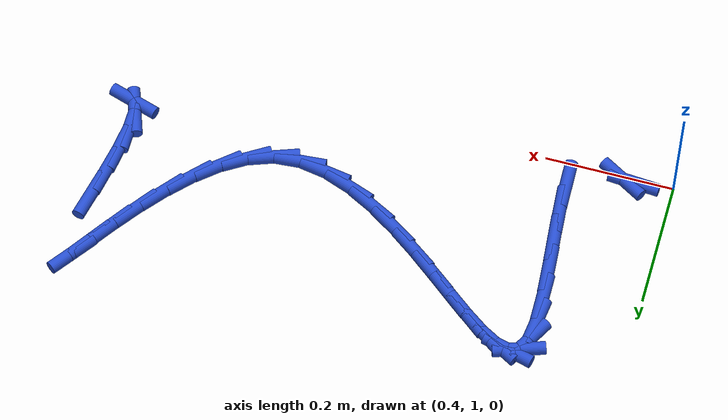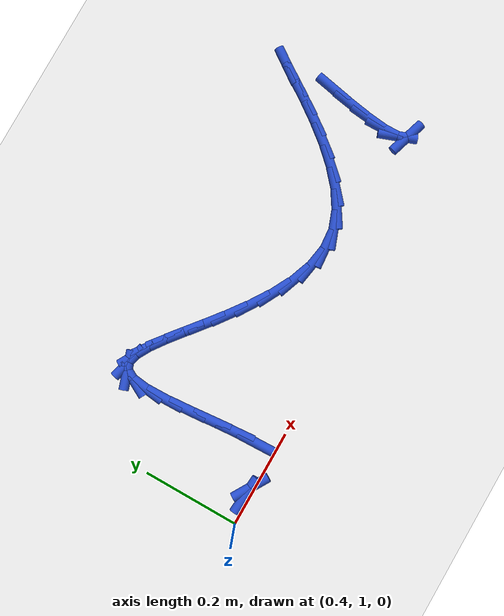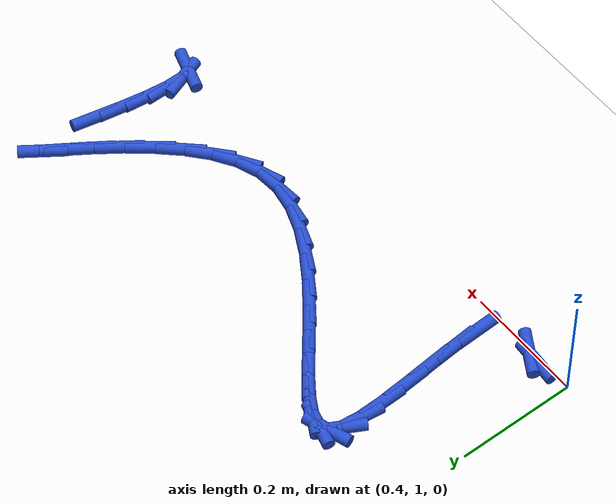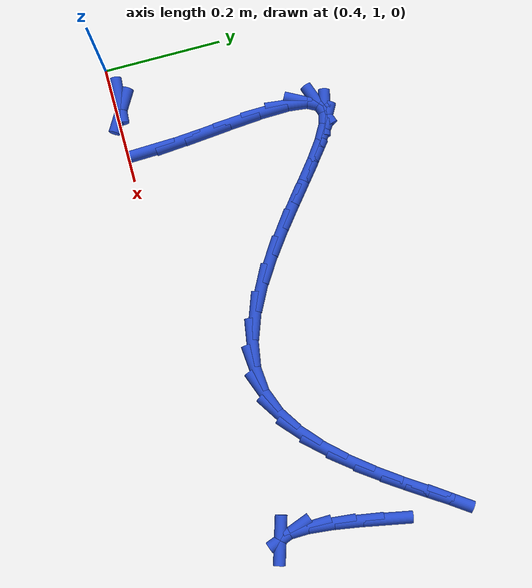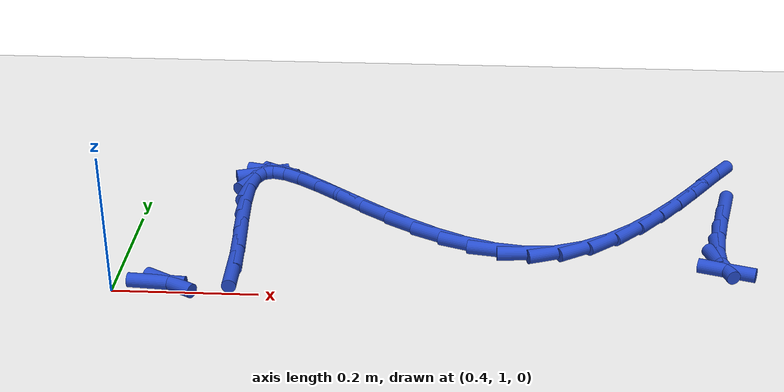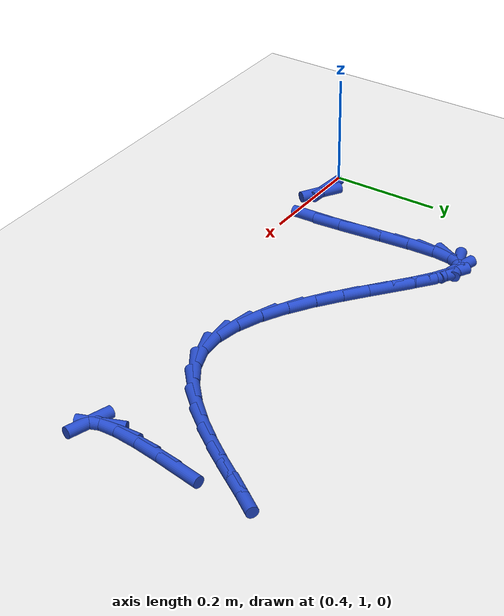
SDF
<sdf version="1.6">
 <world name="default">
  <model name="ground_plane">
   <static>1</static>
   <link name="link">
    <collision name="collision">
     <geometry><plane><normal>0 0 1</normal><size>100 100</size></plane></geometry>
     <surface><friction><ode><mu>100</mu><mu2>50</mu2></ode></friction></surface>
    </collision>
    <visual name="visual">
     <cast_shadows>0</cast_shadows>
     <geometry><plane><normal>0 0 1</normal><size>100 100</size></plane></geometry>
     <material>
      <script><uri>file://media/materials/scripts/gazebo.material</uri><name>Gazebo/WhiteGlow</name></script>
     </material>
    </visual>
   </link>
  </model>
  <model name="line">
   <link name="link_33">
    <pose>0.4602648941003201 1.010320573180472 0.01 0 1.57 -0.07676159061233405</pose>
    <collision name="collision">
     <geometry><cylinder><radius>0.01</radius><length>0.08</length></cylinder></geometry>
    </collision>
    <visual name="visual">
     <material>
      <script><name>Gazebo/Blue</name><uri>file://media/materials/scripts/gazebo.material</uri></script>
     </material>
     <geometry><cylinder><radius>0.01</radius><length>0.08</length></cylinder></geometry>
    </visual>
   </link>
   <link name="link_34">
    <pose>0.47812992323283066 1.0089465252805625 0.01 0 1.57 -0.5379317936606891</pose>
    <collision name="collision">
     <geometry><cylinder><radius>0.01</radius><length>0.08</length></cylinder></geometry>
    </collision>
    <visual name="visual">
     <material>
      <script><name>Gazebo/Blue</name><uri>file://media/materials/scripts/gazebo.material</uri></script>
     </material>
     <geometry><cylinder><radius>0.01</radius><length>0.08</length></cylinder></geometry>
    </visual>
   </link>
   <link name="link_39">
    <pose>0.5580728977265976 1.042823385247488 0.01 0 1.57 -1.537762590267961</pose>
    <collision name="collision">
     <geometry><cylinder><radius>0.01</radius><length>0.08</length></cylinder></geometry>
    </collision>
    <visual name="visual">
     <material>
      <script><name>Gazebo/Blue</name><uri>file://media/materials/scripts/gazebo.material</uri></script>
     </material>
     <geometry><cylinder><radius>0.01</radius><length>0.08</length></cylinder></geometry>
    </visual>
   </link>
   <link name="link_40">
    <pose>0.5565641265849606 1.0884804151800913 0.01 0 1.57 -1.4914132713912989</pose>
    <collision name="collision">
     <geometry><cylinder><radius>0.01</radius><length>0.08</length></cylinder></geometry>
    </collision>
    <visual name="visual">
     <material>
      <script><name>Gazebo/Blue</name><uri>file://media/materials/scripts/gazebo.material</uri></script>
     </material>
     <geometry><cylinder><radius>0.01</radius><length>0.08</length></cylinder></geometry>
    </visual>
   </link>
   <link name="link_41">
    <pose>0.5525079297955532 1.1394695452495438 0.01 0 1.57 -1.47904971407833</pose>
    <collision name="collision">
     <geometry><cylinder><radius>0.01</radius><length>0.08</length></cylinder></geometry>
    </collision>
    <visual name="visual">
     <material>
      <script><name>Gazebo/Blue</name><uri>file://media/materials/scripts/gazebo.material</uri></script>
     </material>
     <geometry><cylinder><radius>0.01</radius><length>0.08</length></cylinder></geometry>
    </visual>
   </link>
   <link name="link_42">
    <pose>0.54770135036678 1.1917121877468675 0.01 0 1.57 -1.4948579686003254</pose>
    <collision name="collision">
     <geometry><cylinder><radius>0.01</radius><length>0.08</length></cylinder></geometry>
    </collision>
    <visual name="visual">
     <material>
      <script><name>Gazebo/Blue</name><uri>file://media/materials/scripts/gazebo.material</uri></script>
     </material>
     <geometry><cylinder><radius>0.01</radius><length>0.08</length></cylinder></geometry>
    </visual>
   </link>
   <link name="link_43">
    <pose>0.543941431307045 1.2411297549630824 0.01 0 1.57 -1.5492486967942585</pose>
    <collision name="collision">
     <geometry><cylinder><radius>0.01</radius><length>0.08</length></cylinder></geometry>
    </collision>
    <visual name="visual">
     <material>
      <script><name>Gazebo/Blue</name><uri>file://media/materials/scripts/gazebo.material</uri></script>
     </material>
     <geometry><cylinder><radius>0.01</radius><length>0.08</length></cylinder></geometry>
    </visual>
   </link>
   <link name="link_44">
    <pose>0.5430252156247518 1.2836436591892102 0.01 0 1.57 1.4532387338493584</pose>
    <collision name="collision">
     <geometry><cylinder><radius>0.01</radius><length>0.08</length></cylinder></geometry>
    </collision>
    <visual name="visual">
     <material>
      <script><name>Gazebo/Blue</name><uri>file://media/materials/scripts/gazebo.material</uri></script>
     </material>
     <geometry><cylinder><radius>0.01</radius><length>0.08</length></cylinder></geometry>
    </visual>
   </link>
   <link name="link_45">
    <pose>0.5467493048111051 1.315176441488841 0.01 0 1.57 1.0748273457671325</pose>
    <collision name="collision">
     <geometry><cylinder><radius>0.01</radius><length>0.08</length></cylinder></geometry>
    </collision>
    <visual name="visual">
     <material>
      <script><name>Gazebo/Blue</name><uri>file://media/materials/scripts/gazebo.material</uri></script>
     </material>
     <geometry><cylinder><radius>0.01</radius><length>0.08</length></cylinder></geometry>
    </visual>
   </link>
   <link name="link_46">
    <pose>0.5563870217666208 1.3329884447594325 0.01 0 1.57 0.3323990029920479</pose>
    <collision name="collision">
     <geometry><cylinder><radius>0.01</radius><length>0.08</length></cylinder></geometry>
    </collision>
    <visual name="visual">
     <material>
      <script><name>Gazebo/Blue</name><uri>file://media/materials/scripts/gazebo.material</uri></script>
     </material>
     <geometry><cylinder><radius>0.01</radius><length>0.08</length></cylinder></geometry>
    </visual>
   </link>
   <link name="link_47">
    <pose>0.571675932542274 1.338266292021979 0.01 0 1.57 -0.2566521204653958</pose>
    <collision name="collision">
     <geometry><cylinder><radius>0.01</radius><length>0.08</length></cylinder></geometry>
    </collision>
    <visual name="visual">
     <material>
      <script><name>Gazebo/Blue</name><uri>file://media/materials/scripts/gazebo.material</uri></script>
     </material>
     <geometry><cylinder><radius>0.01</radius><length>0.08</length></cylinder></geometry>
    </visual>
   </link>
   <link name="link_48">
    <pose>0.5920733062352094 1.3329132069487015 0.01 0 1.57 -0.5135768854988078</pose>
    <collision name="collision">
     <geometry><cylinder><radius>0.01</radius><length>0.08</length></cylinder></geometry>
    </collision>
    <visual name="visual">
     <material>
      <script><name>Gazebo/Blue</name><uri>file://media/materials/scripts/gazebo.material</uri></script>
     </material>
     <geometry><cylinder><radius>0.01</radius><length>0.08</length></cylinder></geometry>
    </visual>
   </link>
   <link name="link_49">
    <pose>0.617036411942572 1.3188324132118214 0.01 0 1.57 -0.6248242220848798</pose>
    <collision name="collision">
     <geometry><cylinder><radius>0.01</radius><length>0.08</length></cylinder></geometry>
    </collision>
    <visual name="visual">
     <material>
      <script><name>Gazebo/Blue</name><uri>file://media/materials/scripts/gazebo.material</uri></script>
     </material>
     <geometry><cylinder><radius>0.01</radius><length>0.08</length></cylinder></geometry>
    </visual>
   </link>
   <link name="link_50">
    <pose>0.6460225187615066 1.2979271344835617 0.01 0 1.57 -0.6719822785928745</pose>
    <collision name="collision">
     <geometry><cylinder><radius>0.01</radius><length>0.08</length></cylinder></geometry>
    </collision>
    <visual name="visual">
     <material>
      <script><name>Gazebo/Blue</name><uri>file://media/materials/scripts/gazebo.material</uri></script>
     </material>
     <geometry><cylinder><radius>0.01</radius><length>0.08</length></cylinder></geometry>
    </visual>
   </link>
   <link name="link_51">
    <pose>0.6784888957891578 1.2721005944361439 0.01 0 1.57 -0.6836574019877206</pose>
    <collision name="collision">
     <geometry><cylinder><radius>0.01</radius><length>0.08</length></cylinder></geometry>
    </collision>
    <visual name="visual">
     <material>
      <script><name>Gazebo/Blue</name><uri>file://media/materials/scripts/gazebo.material</uri></script>
     </material>
     <geometry><cylinder><radius>0.01</radius><length>0.08</length></cylinder></geometry>
    </visual>
   </link>
   <link name="link_52">
    <pose>0.7138928121226714 1.2432560167417888 0.01 0 1.57 -0.670214420626298</pose>
    <collision name="collision">
     <geometry><cylinder><radius>0.01</radius><length>0.08</length></cylinder></geometry>
    </collision>
    <visual name="visual">
     <material>
      <script><name>Gazebo/Blue</name><uri>file://media/materials/scripts/gazebo.material</uri></script>
     </material>
     <geometry><cylinder><radius>0.01</radius><length>0.08</length></cylinder></geometry>
    </visual>
   </link>
   <link name="link_53">
    <pose>0.7516915368591915 1.213296625072719 0.01 0 1.57 -0.6342842632402688</pose>
    <collision name="collision">
     <geometry><cylinder><radius>0.01</radius><length>0.08</length></cylinder></geometry>
    </collision>
    <visual name="visual">
     <material>
      <script><name>Gazebo/Blue</name><uri>file://media/materials/scripts/gazebo.material</uri></script>
     </material>
     <geometry><cylinder><radius>0.01</radius><length>0.08</length></cylinder></geometry>
    </visual>
   </link>
   <link name="link_54">
    <pose>0.791342339095863 1.1841256431011566 0.01 0 1.57 -0.5738869354243196</pose>
    <collision name="collision">
     <geometry><cylinder><radius>0.01</radius><length>0.08</length></cylinder></geometry>
    </collision>
    <visual name="visual">
     <material>
      <script><name>Gazebo/Blue</name><uri>file://media/materials/scripts/gazebo.material</uri></script>
     </material>
     <geometry><cylinder><radius>0.01</radius><length>0.08</length></cylinder></geometry>
    </visual>
   </link>
   <link name="link_55">
    <pose>0.8323024879298315 1.1576462944993227 0.01 0 1.57 -0.4830324689933849</pose>
    <collision name="collision">
     <geometry><cylinder><radius>0.01</radius><length>0.08</length></cylinder></geometry>
    </collision>
    <visual name="visual">
     <material>
      <script><name>Gazebo/Blue</name><uri>file://media/materials/scripts/gazebo.material</uri></script>
     </material>
     <geometry><cylinder><radius>0.01</radius><length>0.08</length></cylinder></geometry>
    </visual>
   </link>
   <link name="link_56">
    <pose>0.8740292524582416 1.1357618029394396 0.01 0 1.57 -0.3515394751154033</pose>
    <collision name="collision">
     <geometry><cylinder><radius>0.01</radius><length>0.08</length></cylinder></geometry>
    </collision>
    <visual name="visual">
     <material>
      <script><name>Gazebo/Blue</name><uri>file://media/materials/scripts/gazebo.material</uri></script>
     </material>
     <geometry><cylinder><radius>0.01</radius><length>0.08</length></cylinder></geometry>
    </visual>
   </link>
   <link name="link_57">
    <pose>0.9159799017782378 1.1203753920937287 0.01 0 1.57 -0.16623458699434665</pose>
    <collision name="collision">
     <geometry><cylinder><radius>0.01</radius><length>0.08</length></cylinder></geometry>
    </collision>
    <visual name="visual">
     <material>
      <script><name>Gazebo/Blue</name><uri>file://media/materials/scripts/gazebo.material</uri></script>
     </material>
     <geometry><cylinder><radius>0.01</radius><length>0.08</length></cylinder></geometry>
    </visual>
   </link>
   <link name="link_58">
    <pose>0.9576117049869655 1.113390285634412 0.01 0 1.57 0.08123805987009364</pose>
    <collision name="collision">
     <geometry><cylinder><radius>0.01</radius><length>0.08</length></cylinder></geometry>
    </collision>
    <visual name="visual">
     <material>
      <script><name>Gazebo/Blue</name><uri>file://media/materials/scripts/gazebo.material</uri></script>
     </material>
     <geometry><cylinder><radius>0.01</radius><length>0.08</length></cylinder></geometry>
    </visual>
   </link>
   <link name="link_59">
    <pose>0.998381931960715 1.1167096852503764 0.01 0 1.57 0.35755066332058805</pose>
    <collision name="collision">
     <geometry><cylinder><radius>0.01</radius><length>0.08</length></cylinder></geometry>
    </collision>
    <visual name="visual">
     <material>
      <script><name>Gazebo/Blue</name><uri>file://media/materials/scripts/gazebo.material</uri></script>
     </material>
     <geometry><cylinder><radius>0.01</radius><length>0.08</length></cylinder></geometry>
    </visual>
   </link>
   <link name="link_60">
    <pose>1.0377765231723843 1.131427861648435 0.01 0 1.57 0.5729358258525719</pose>
    <collision name="collision">
     <geometry><cylinder><radius>0.01</radius><length>0.08</length></cylinder></geometry>
    </collision>
    <visual name="visual">
     <material>
      <script><name>Gazebo/Blue</name><uri>file://media/materials/scripts/gazebo.material</uri></script>
     </material>
     <geometry><cylinder><radius>0.01</radius><length>0.08</length></cylinder></geometry>
    </visual>
   </link>
   <link name="link_61">
    <pose>1.075385928826018 1.1556903795627251 0.01 0 1.57 0.7231617154315875</pose>
    <collision name="collision">
     <geometry><cylinder><radius>0.01</radius><length>0.08</length></cylinder></geometry>
    </collision>
    <visual name="visual">
     <material>
      <script><name>Gazebo/Blue</name><uri>file://media/materials/scripts/gazebo.material</uri></script>
     </material>
     <geometry><cylinder><radius>0.01</radius><length>0.08</length></cylinder></geometry>
    </visual>
   </link>
   <link name="link_62">
    <pose>1.1108244053441816 1.18697111949308 0.01 0 1.57 0.8274831755246523</pose>
    <collision name="collision">
     <geometry><cylinder><radius>0.01</radius><length>0.08</length></cylinder></geometry>
    </collision>
    <visual name="visual">
     <material>
      <script><name>Gazebo/Blue</name><uri>file://media/materials/scripts/gazebo.material</uri></script>
     </material>
     <geometry><cylinder><radius>0.01</radius><length>0.08</length></cylinder></geometry>
    </visual>
   </link>
   <link name="link_63">
    <pose>1.143706209149443 1.2227439619393339 0.01 0 1.57 0.9001349775339298</pose>
    <collision name="collision">
     <geometry><cylinder><radius>0.01</radius><length>0.08</length></cylinder></geometry>
    </collision>
    <visual name="visual">
     <material>
      <script><name>Gazebo/Blue</name><uri>file://media/materials/scripts/gazebo.material</uri></script>
     </material>
     <geometry><cylinder><radius>0.01</radius><length>0.08</length></cylinder></geometry>
    </visual>
   </link>
   <link name="link_64">
    <pose>1.1736455966643682 1.2604827874013207 0.01 0 1.57 0.9495675840042191</pose>
    <collision name="collision">
     <geometry><cylinder><radius>0.01</radius><length>0.08</length></cylinder></geometry>
    </collision>
    <visual name="visual">
     <material>
      <script><name>Gazebo/Blue</name><uri>file://media/materials/scripts/gazebo.material</uri></script>
     </material>
     <geometry><cylinder><radius>0.01</radius><length>0.08</length></cylinder></geometry>
    </visual>
   </link>
   <link name="link_65">
    <pose>1.200256824311524 1.2976614763788736 0.01 0 1.57 0.9793690054236679</pose>
    <collision name="collision">
     <geometry><cylinder><radius>0.01</radius><length>0.08</length></cylinder></geometry>
    </collision>
    <visual name="visual">
     <material>
      <script><name>Gazebo/Blue</name><uri>file://media/materials/scripts/gazebo.material</uri></script>
     </material>
     <geometry><cylinder><radius>0.01</radius><length>0.08</length></cylinder></geometry>
    </visual>
   </link>
   <link name="link_66">
    <pose>1.223154148513477 1.3317539093718265 0.01 0 1.57 0.9874027941162314</pose>
    <collision name="collision">
     <geometry><cylinder><radius>0.01</radius><length>0.08</length></cylinder></geometry>
    </collision>
    <visual name="visual">
     <material>
      <script><name>Gazebo/Blue</name><uri>file://media/materials/scripts/gazebo.material</uri></script>
     </material>
     <geometry><cylinder><radius>0.01</radius><length>0.08</length></cylinder></geometry>
    </visual>
   </link>
   <link name="link_67">
    <pose>1.2419518256927937 1.3602339668800127 0.01 0 1.57 0.9576595495632187</pose>
    <collision name="collision">
     <geometry><cylinder><radius>0.01</radius><length>0.08</length></cylinder></geometry>
    </collision>
    <visual name="visual">
     <material>
      <script><name>Gazebo/Blue</name><uri>file://media/materials/scripts/gazebo.material</uri></script>
     </material>
     <geometry><cylinder><radius>0.01</radius><length>0.08</length></cylinder></geometry>
    </visual>
   </link>
   <link name="link_74">
    <pose>1.2464862663276168 1.2558229747516763 0.01 0 1.57 1.3778700940404252</pose>
    <collision name="collision">
     <geometry><cylinder><radius>0.01</radius><length>0.08</length></cylinder></geometry>
    </collision>
    <visual name="visual">
     <material>
      <script><name>Gazebo/Blue</name><uri>file://media/materials/scripts/gazebo.material</uri></script>
     </material>
     <geometry><cylinder><radius>0.01</radius><length>0.08</length></cylinder></geometry>
    </visual>
   </link>
   <link name="link_75">
    <pose>1.2375870874692683 1.2102693293678641 0.01 0 1.57 1.40744654913582</pose>
    <collision name="collision">
     <geometry><cylinder><radius>0.01</radius><length>0.08</length></cylinder></geometry>
    </collision>
    <visual name="visual">
     <material>
      <script><name>Gazebo/Blue</name><uri>file://media/materials/scripts/gazebo.material</uri></script>
     </material>
     <geometry><cylinder><radius>0.01</radius><length>0.08</length></cylinder></geometry>
    </visual>
   </link>
   <link name="link_76">
    <pose>1.2303729273664459 1.1664989596319737 0.01 0 1.57 1.4653773698275474</pose>
    <collision name="collision">
     <geometry><cylinder><radius>0.01</radius><length>0.08</length></cylinder></geometry>
    </collision>
    <visual name="visual">
     <material>
      <script><name>Gazebo/Blue</name><uri>file://media/materials/scripts/gazebo.material</uri></script>
     </material>
     <geometry><cylinder><radius>0.01</radius><length>0.08</length></cylinder></geometry>
    </visual>
   </link>
   <link name="link_77">
    <pose>1.2262959667856892 1.1279684442207814 0.01 0 1.57 -1.5536223671169886</pose>
    <collision name="collision">
     <geometry><cylinder><radius>0.01</radius><length>0.08</length></cylinder></geometry>
    </collision>
    <visual name="visual">
     <material>
      <script><name>Gazebo/Blue</name><uri>file://media/materials/scripts/gazebo.material</uri></script>
     </material>
     <geometry><cylinder><radius>0.01</radius><length>0.08</length></cylinder></geometry>
    </visual>
   </link>
   <link name="link_78">
    <pose>1.2268083864935366 1.098134361811065 0.01 0 1.57 -1.2167855442701356</pose>
    <collision name="collision">
     <geometry><cylinder><radius>0.01</radius><length>0.08</length></cylinder></geometry>
    </collision>
    <visual name="visual">
     <material>
      <script><name>Gazebo/Blue</name><uri>file://media/materials/scripts/gazebo.material</uri></script>
     </material>
     <geometry><cylinder><radius>0.01</radius><length>0.08</length></cylinder></geometry>
    </visual>
   </link>
   <link name="link_79">
    <pose>1.2333523058330418 1.080428012693828 0.01 0 1.57 -0.3039822398307355</pose>
    <collision name="collision">
     <geometry><cylinder><radius>0.01</radius><length>0.08</length></cylinder></geometry>
    </collision>
    <visual name="visual">
     <material>
      <script><name>Gazebo/Blue</name><uri>file://media/materials/scripts/gazebo.material</uri></script>
     </material>
     <geometry><cylinder><radius>0.01</radius><length>0.08</length></cylinder></geometry>
    </visual>
   </link>
  </model>
 </world>
</sdf>
